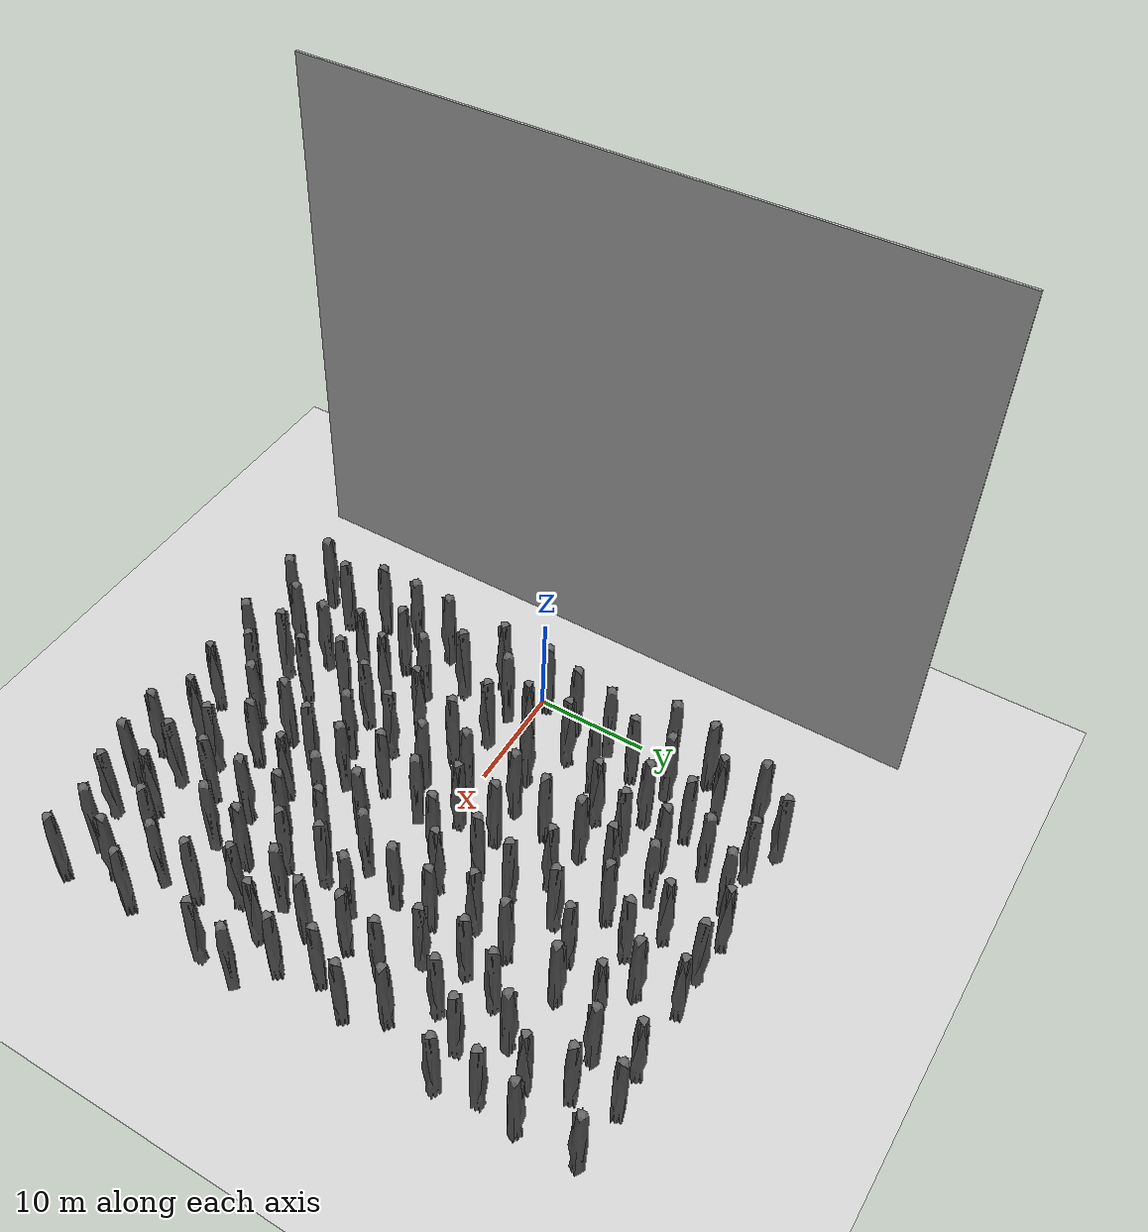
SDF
<sdf version="1.4">
 <world name="default">
  <model name="ground_plane">
   <static>1</static>
   <link name="link">
    <collision name="collision">
     <geometry><plane><normal>0 0 1</normal><size>1000 1000</size></plane></geometry>
     <surface>
      <contact><collide_bitmask>65535</collide_bitmask></contact>
      <friction><ode><mu>100</mu><mu2>50</mu2></ode></friction>
     </surface>
    </collision>
    <visual name="visual">
     <cast_shadows>0</cast_shadows>
     <geometry><plane><normal>0 0 1</normal><size>1000 1000</size></plane></geometry>
    </visual>
   </link>
  </model>
  <model name="wall_back">
   <static>1</static>
   <link name="link">
    <pose>0 0 25.0 0 0 0</pose>
    <collision name="collision"><geometry><box><size>60.0 0.2 50.0</size></box></geometry></collision>
    <visual name="visual">
     <cast_shadows>0</cast_shadows>
     <geometry><box><size>60.0 0.2 50.0</size></box></geometry>
    </visual>
   </link>
   <pose>-10.0 0.0 0 0 0 1.57</pose>
  </model>
  <include><uri>model://sun</uri></include>
  <include>
   <name>columnSimple Stone0</name>
   <uri>model://Simple Stone</uri>
   <pose>0.14754171669483185 -23.147881627082825 0 0 0 1.50489291628</pose>
   <static>true</static>
  </include>
  <include>
   <name>columnSimple Stone1</name>
   <uri>model://Simple Stone</uri>
   <pose>1.775051474571228 -20.0453462600708 0 0 0 0.287684038362</pose>
   <static>true</static>
  </include>
  <include>
   <name>columnSimple Stone2</name>
   <uri>model://Simple Stone</uri>
   <pose>0.33250316977500916 -16.852609634399414 0 0 0 3.57389762797</pose>
   <static>true</static>
  </include>
  <include>
   <name>columnSimple Stone3</name>
   <uri>model://Simple Stone</uri>
   <pose>0.23410218954086304 -13.350492477416992 0 0 0 2.6313120784</pose>
   <static>true</static>
  </include>
  <include>
   <name>columnSimple Stone4</name>
   <uri>model://Simple Stone</uri>
   <pose>0.2895624339580536 -9.847431182861328 0 0 0 2.84282429642</pose>
   <static>true</static>
  </include>
  <include>
   <name>columnSimple Stone5</name>
   <uri>model://Simple Stone</uri>
   <pose>0.48135095834732056 -3.866830825805664 0 0 0 4.75477015121</pose>
   <static>true</static>
  </include>
  <include>
   <name>columnSimple Stone6</name>
   <uri>model://Simple Stone</uri>
   <pose>0.6675546169281006 0.7646198272705078 0 0 0 3.59889966092</pose>
   <static>true</static>
  </include>
  <include>
   <name>columnSimple Stone7</name>
   <uri>model://Simple Stone</uri>
   <pose>1.5339256525039673 4.159309387207031 0 0 0 3.3661240134</pose>
   <static>true</static>
  </include>
  <include>
   <name>columnSimple Stone8</name>
   <uri>model://Simple Stone</uri>
   <pose>1.9819575548171997 7.715862274169922 0 0 0 2.05311160688</pose>
   <static>true</static>
  </include>
  <include>
   <name>columnSimple Stone9</name>
   <uri>model://Simple Stone</uri>
   <pose>0.3023340404033661 13.031356811523438 0 0 0 2.1610116684</pose>
   <static>true</static>
  </include>
  <include>
   <name>columnSimple Stone10</name>
   <uri>model://Simple Stone</uri>
   <pose>0.6261110901832581 16.76581573486328 0 0 0 0.749036448193</pose>
   <static>true</static>
  </include>
  <include>
   <name>columnSimple Stone11</name>
   <uri>model://Simple Stone</uri>
   <pose>1.9796584844589233 22.110496520996094 0 0 0 1.0792350142</pose>
   <static>true</static>
  </include>
  <include>
   <name>columnSimple Stone12</name>
   <uri>model://Simple Stone</uri>
   <pose>3.7548537254333496 -24.81793712079525 0 0 0 2.09072740564</pose>
   <static>true</static>
  </include>
  <include>
   <name>columnSimple Stone13</name>
   <uri>model://Simple Stone</uri>
   <pose>3.615328550338745 -12.432984352111816 0 0 0 0.7970898873</pose>
   <static>true</static>
  </include>
  <include>
   <name>columnSimple Stone14</name>
   <uri>model://Simple Stone</uri>
   <pose>3.1247594356536865 -6.4896392822265625 0 0 0 4.52911520205</pose>
   <static>true</static>
  </include>
  <include>
   <name>columnSimple Stone15</name>
   <uri>model://Simple Stone</uri>
   <pose>3.283823013305664 -1.7642936706542969 0 0 0 2.31075155043</pose>
   <static>true</static>
  </include>
  <include>
   <name>columnSimple Stone16</name>
   <uri>model://Simple Stone</uri>
   <pose>4.853242874145508 5.280311584472656 0 0 0 5.66923675732</pose>
   <static>true</static>
  </include>
  <include>
   <name>columnSimple Stone17</name>
   <uri>model://Simple Stone</uri>
   <pose>3.596442222595215 10.8251953125 0 0 0 3.69309660115</pose>
   <static>true</static>
  </include>
  <include>
   <name>columnSimple Stone18</name>
   <uri>model://Simple Stone</uri>
   <pose>3.556871175765991 14.328472137451172 0 0 0 1.36053178144</pose>
   <static>true</static>
  </include>
  <include>
   <name>columnSimple Stone19</name>
   <uri>model://Simple Stone</uri>
   <pose>3.3989083766937256 18.907337188720703 0 0 0 5.06022719829</pose>
   <static>true</static>
  </include>
  <include>
   <name>columnSimple Stone20</name>
   <uri>model://Simple Stone</uri>
   <pose>4.30951452255249 24.92007064819336 0 0 0 4.0857814324</pose>
   <static>true</static>
  </include>
  <include>
   <name>columnSimple Stone21</name>
   <uri>model://Simple Stone</uri>
   <pose>6.232275009155273 -22.34066104888916 0 0 0 3.12646417228</pose>
   <static>true</static>
  </include>
  <include>
   <name>columnSimple Stone22</name>
   <uri>model://Simple Stone</uri>
   <pose>6.822526454925537 -18.87165641784668 0 0 0 2.76766385324</pose>
   <static>true</static>
  </include>
  <include>
   <name>columnSimple Stone23</name>
   <uri>model://Simple Stone</uri>
   <pose>5.848011016845703 -15.506417274475098 0 0 0 5.18298819179</pose>
   <static>true</static>
  </include>
  <include>
   <name>columnSimple Stone24</name>
   <uri>model://Simple Stone</uri>
   <pose>7.113478660583496 -12.239445686340332 0 0 0 5.1514723059</pose>
   <static>true</static>
  </include>
  <include>
   <name>columnSimple Stone25</name>
   <uri>model://Simple Stone</uri>
   <pose>5.266031742095947 -9.262626647949219 0 0 0 2.74013546887</pose>
   <static>true</static>
  </include>
  <include>
   <name>columnSimple Stone26</name>
   <uri>model://Simple Stone</uri>
   <pose>6.785283088684082 -1.6447582244873047 0 0 0 4.54538749685</pose>
   <static>true</static>
  </include>
  <include>
   <name>columnSimple Stone27</name>
   <uri>model://Simple Stone</uri>
   <pose>5.110060691833496 1.4322757720947266 0 0 0 5.36890198906</pose>
   <static>true</static>
  </include>
  <include>
   <name>columnSimple Stone28</name>
   <uri>model://Simple Stone</uri>
   <pose>6.221914291381836 8.505409240722656 0 0 0 3.586111318</pose>
   <static>true</static>
  </include>
  <include>
   <name>columnSimple Stone29</name>
   <uri>model://Simple Stone</uri>
   <pose>7.046316623687744 14.014968872070312 0 0 0 3.01448209637</pose>
   <static>true</static>
  </include>
  <include>
   <name>columnSimple Stone30</name>
   <uri>model://Simple Stone</uri>
   <pose>6.69338846206665 17.715312957763672 0 0 0 0.35071986779</pose>
   <static>true</static>
  </include>
  <include>
   <name>columnSimple Stone31</name>
   <uri>model://Simple Stone</uri>
   <pose>9.584758758544922 -21.323132753372192 0 0 0 6.12786088334</pose>
   <static>true</static>
  </include>
  <include>
   <name>columnSimple Stone32</name>
   <uri>model://Simple Stone</uri>
   <pose>9.418303489685059 -15.007399559020996 0 0 0 0.38732367016</pose>
   <static>true</static>
  </include>
  <include>
   <name>columnSimple Stone33</name>
   <uri>model://Simple Stone</uri>
   <pose>8.741890907287598 -7.472328186035156 0 0 0 5.54532851408</pose>
   <static>true</static>
  </include>
  <include>
   <name>columnSimple Stone34</name>
   <uri>model://Simple Stone</uri>
   <pose>8.534000396728516 3.3977298736572266 0 0 0 1.40312726587</pose>
   <static>true</static>
  </include>
  <include>
   <name>columnSimple Stone35</name>
   <uri>model://Simple Stone</uri>
   <pose>9.099355697631836 10.521190643310547 0 0 0 5.57036833197</pose>
   <static>true</static>
  </include>
  <include>
   <name>columnSimple Stone36</name>
   <uri>model://Simple Stone</uri>
   <pose>9.137890815734863 20.55062484741211 0 0 0 2.20242143575</pose>
   <static>true</static>
  </include>
  <include>
   <name>columnSimple Stone37</name>
   <uri>model://Simple Stone</uri>
   <pose>7.591641426086426 23.694446563720703 0 0 0 4.18035922395</pose>
   <static>true</static>
  </include>
  <include>
   <name>columnSimple Stone38</name>
   <uri>model://Simple Stone</uri>
   <pose>10.217961311340332 -24.76893700659275 0 0 0 2.24409855426</pose>
   <static>true</static>
  </include>
  <include>
   <name>columnSimple Stone39</name>
   <uri>model://Simple Stone</uri>
   <pose>11.016083717346191 -18.125349044799805 0 0 0 4.03185819469</pose>
   <static>true</static>
  </include>
  <include>
   <name>columnSimple Stone40</name>
   <uri>model://Simple Stone</uri>
   <pose>10.575268745422363 -11.700445175170898 0 0 0 4.21427246811</pose>
   <static>true</static>
  </include>
  <include>
   <name>columnSimple Stone41</name>
   <uri>model://Simple Stone</uri>
   <pose>12.197824478149414 -8.047683715820312 0 0 0 6.00571770377</pose>
   <static>true</static>
  </include>
  <include>
   <name>columnSimple Stone42</name>
   <uri>model://Simple Stone</uri>
   <pose>9.934770584106445 -3.1794395446777344 0 0 0 3.87340123812</pose>
   <static>true</static>
  </include>
  <include>
   <name>columnSimple Stone43</name>
   <uri>model://Simple Stone</uri>
   <pose>12.219521522521973 -0.3005523681640625 0 0 0 2.79822735729</pose>
   <static>true</static>
  </include>
  <include>
   <name>columnSimple Stone44</name>
   <uri>model://Simple Stone</uri>
   <pose>11.929059028625488 4.262651443481445 0 0 0 2.76605358445</pose>
   <static>true</static>
  </include>
  <include>
   <name>columnSimple Stone45</name>
   <uri>model://Simple Stone</uri>
   <pose>10.537047386169434 13.716117858886719 0 0 0 4.30910957524</pose>
   <static>true</static>
  </include>
  <include>
   <name>columnSimple Stone46</name>
   <uri>model://Simple Stone</uri>
   <pose>10.158652305603027 17.19912338256836 0 0 0 3.18229982345</pose>
   <static>true</static>
  </include>
  <include>
   <name>columnSimple Stone47</name>
   <uri>model://Simple Stone</uri>
   <pose>11.127237319946289 23.434547424316406 0 0 0 1.94104317052</pose>
   <static>true</static>
  </include>
  <include>
   <name>columnSimple Stone48</name>
   <uri>model://Simple Stone</uri>
   <pose>12.954617500305176 -22.28155016899109 0 0 0 0.443772090493</pose>
   <static>true</static>
  </include>
  <include>
   <name>columnSimple Stone49</name>
   <uri>model://Simple Stone</uri>
   <pose>14.01638412475586 -11.042238235473633 0 0 0 1.93618825736</pose>
   <static>true</static>
  </include>
  <include>
   <name>columnSimple Stone50</name>
   <uri>model://Simple Stone</uri>
   <pose>13.354307174682617 -3.941854476928711 0 0 0 2.9370426648</pose>
   <static>true</static>
  </include>
  <include>
   <name>columnSimple Stone51</name>
   <uri>model://Simple Stone</uri>
   <pose>12.730664253234863 7.707767486572266 0 0 0 0.617810261586</pose>
   <static>true</static>
  </include>
  <include>
   <name>columnSimple Stone52</name>
   <uri>model://Simple Stone</uri>
   <pose>12.97669792175293 11.202621459960938 0 0 0 1.19347130401</pose>
   <static>true</static>
  </include>
  <include>
   <name>columnSimple Stone53</name>
   <uri>model://Simple Stone</uri>
   <pose>13.934209823608398 14.572734832763672 0 0 0 5.79841205643</pose>
   <static>true</static>
  </include>
  <include>
   <name>columnSimple Stone54</name>
   <uri>model://Simple Stone</uri>
   <pose>13.642833709716797 18.064098358154297 0 0 0 1.98400627539</pose>
   <static>true</static>
  </include>
  <include>
   <name>columnSimple Stone55</name>
   <uri>model://Simple Stone</uri>
   <pose>14.312417030334473 24.89370346069336 0 0 0 5.17506648581</pose>
   <static>true</static>
  </include>
  <include>
   <name>columnSimple Stone56</name>
   <uri>model://Simple Stone</uri>
   <pose>15.907683372497559 -24.16673392057419 0 0 0 5.39842269766</pose>
   <static>true</static>
  </include>
  <include>
   <name>columnSimple Stone57</name>
   <uri>model://Simple Stone</uri>
   <pose>15.739581108093262 -19.807469844818115 0 0 0 1.72862798228</pose>
   <static>true</static>
  </include>
  <include>
   <name>columnSimple Stone58</name>
   <uri>model://Simple Stone</uri>
   <pose>15.823551177978516 -16.30497646331787 0 0 0 3.19565959719</pose>
   <static>true</static>
  </include>
  <include>
   <name>columnSimple Stone59</name>
   <uri>model://Simple Stone</uri>
   <pose>16.974197387695312 -12.995818138122559 0 0 0 0.183602370901</pose>
   <static>true</static>
  </include>
  <include>
   <name>columnSimple Stone60</name>
   <uri>model://Simple Stone</uri>
   <pose>17.16084861755371 -9.497294425964355 0 0 0 2.45724492636</pose>
   <static>true</static>
  </include>
  <include>
   <name>columnSimple Stone61</name>
   <uri>model://Simple Stone</uri>
   <pose>16.055822372436523 -6.172624588012695 0 0 0 3.91631987204</pose>
   <static>true</static>
  </include>
  <include>
   <name>columnSimple Stone62</name>
   <uri>model://Simple Stone</uri>
   <pose>16.687164306640625 -2.2846736907958984 0 0 0 2.08439291432</pose>
   <static>true</static>
  </include>
  <include>
   <name>columnSimple Stone63</name>
   <uri>model://Simple Stone</uri>
   <pose>15.472129821777344 1.0013885498046875 0 0 0 4.85713004822</pose>
   <static>true</static>
  </include>
  <include>
   <name>columnSimple Stone64</name>
   <uri>model://Simple Stone</uri>
   <pose>15.424198150634766 4.504560470581055 0 0 0 3.28803245864</pose>
   <static>true</static>
  </include>
  <include>
   <name>columnSimple Stone65</name>
   <uri>model://Simple Stone</uri>
   <pose>16.70648193359375 10.581733703613281 0 0 0 4.63384775706</pose>
   <static>true</static>
  </include>
  <include>
   <name>columnSimple Stone66</name>
   <uri>model://Simple Stone</uri>
   <pose>17.096233367919922 16.081417083740234 0 0 0 0.678942152014</pose>
   <static>true</static>
  </include>
  <include>
   <name>columnSimple Stone67</name>
   <uri>model://Simple Stone</uri>
   <pose>16.246177673339844 20.748249053955078 0 0 0 5.36750675135</pose>
   <static>true</static>
  </include>
  <include>
   <name>columnSimple Stone68</name>
   <uri>model://Simple Stone</uri>
   <pose>19.785531997680664 -23.142656207084656 0 0 0 5.49311071617</pose>
   <static>true</static>
  </include>
  <include>
   <name>columnSimple Stone69</name>
   <uri>model://Simple Stone</uri>
   <pose>19.19119644165039 -17.271142959594727 0 0 0 3.59579196386</pose>
   <static>true</static>
  </include>
  <include>
   <name>columnSimple Stone70</name>
   <uri>model://Simple Stone</uri>
   <pose>19.01988983154297 0.8746089935302734 0 0 0 3.47509623889</pose>
   <static>true</static>
  </include>
  <include>
   <name>columnSimple Stone71</name>
   <uri>model://Simple Stone</uri>
   <pose>18.88249397277832 5.06553840637207 0 0 0 3.8583642764</pose>
   <static>true</static>
  </include>
  <include>
   <name>columnSimple Stone72</name>
   <uri>model://Simple Stone</uri>
   <pose>19.530733108520508 8.508544921875 0 0 0 6.24923563768</pose>
   <static>true</static>
  </include>
  <include>
   <name>columnSimple Stone73</name>
   <uri>model://Simple Stone</uri>
   <pose>19.67139434814453 12.775707244873047 0 0 0 6.20291434418</pose>
   <static>true</static>
  </include>
  <include>
   <name>columnSimple Stone74</name>
   <uri>model://Simple Stone</uri>
   <pose>19.208036422729492 18.876911163330078 0 0 0 3.87512907907</pose>
   <static>true</static>
  </include>
  <include>
   <name>columnSimple Stone75</name>
   <uri>model://Simple Stone</uri>
   <pose>17.92275619506836 24.573020935058594 0 0 0 5.95423371622</pose>
   <static>true</static>
  </include>
  <include>
   <name>columnSimple Stone76</name>
   <uri>model://Simple Stone</uri>
   <pose>21.3675537109375 -20.01668119430542 0 0 0 6.2414470317</pose>
   <static>true</static>
  </include>
  <include>
   <name>columnSimple Stone77</name>
   <uri>model://Simple Stone</uri>
   <pose>20.65690040588379 -12.905740737915039 0 0 0 5.24605060373</pose>
   <static>true</static>
  </include>
  <include>
   <name>columnSimple Stone78</name>
   <uri>model://Simple Stone</uri>
   <pose>20.66305923461914 -9.402246475219727 0 0 0 2.37636288873</pose>
   <static>true</static>
  </include>
  <include>
   <name>columnSimple Stone79</name>
   <uri>model://Simple Stone</uri>
   <pose>20.231496810913086 -5.486799240112305 0 0 0 1.63063263135</pose>
   <static>true</static>
  </include>
  <include>
   <name>columnSimple Stone80</name>
   <uri>model://Simple Stone</uri>
   <pose>21.756608963012695 3.0620460510253906 0 0 0 5.71264476725</pose>
   <static>true</static>
  </include>
  <include>
   <name>columnSimple Stone81</name>
   <uri>model://Simple Stone</uri>
   <pose>22.00667381286621 15.387409210205078 0 0 0 0.232099360524</pose>
   <static>true</static>
  </include>
  <include>
   <name>columnSimple Stone82</name>
   <uri>model://Simple Stone</uri>
   <pose>21.798364639282227 21.235877990722656 0 0 0 0.927096298588</pose>
   <static>true</static>
  </include>
  <include>
   <name>columnSimple Stone83</name>
   <uri>model://Simple Stone</uri>
   <pose>21.42320442199707 24.719234466552734 0 0 0 4.8984930655</pose>
   <static>true</static>
  </include>
  <include>
   <name>columnSimple Stone84</name>
   <uri>model://Simple Stone</uri>
   <pose>22.792057037353516 -24.94135555624962 0 0 0 3.47200046269</pose>
   <static>true</static>
  </include>
  <include>
   <name>columnSimple Stone85</name>
   <uri>model://Simple Stone</uri>
   <pose>24.489177703857422 -21.607271432876587 0 0 0 4.80179430205</pose>
   <static>true</static>
  </include>
  <include>
   <name>columnSimple Stone86</name>
   <uri>model://Simple Stone</uri>
   <pose>24.295787811279297 -18.093153953552246 0 0 0 4.31720091855</pose>
   <static>true</static>
  </include>
  <include>
   <name>columnSimple Stone87</name>
   <uri>model://Simple Stone</uri>
   <pose>24.2504825592041 -14.304128646850586 0 0 0 1.73005316285</pose>
   <static>true</static>
  </include>
  <include>
   <name>columnSimple Stone88</name>
   <uri>model://Simple Stone</uri>
   <pose>23.86609649658203 -10.821779251098633 0 0 0 3.5940824211</pose>
   <static>true</static>
  </include>
  <include>
   <name>columnSimple Stone89</name>
   <uri>model://Simple Stone</uri>
   <pose>23.32729721069336 -7.127084732055664 0 0 0 3.66996996153</pose>
   <static>true</static>
  </include>
  <include>
   <name>columnSimple Stone90</name>
   <uri>model://Simple Stone</uri>
   <pose>23.295921325683594 -2.8103885650634766 0 0 0 2.4842188336</pose>
   <static>true</static>
  </include>
  <include>
   <name>columnSimple Stone91</name>
   <uri>model://Simple Stone</uri>
   <pose>24.661624908447266 1.0082244873046875 0 0 0 1.76191615588</pose>
   <static>true</static>
  </include>
  <include>
   <name>columnSimple Stone92</name>
   <uri>model://Simple Stone</uri>
   <pose>23.38998031616211 7.635951995849609 0 0 0 4.65788817834</pose>
   <static>true</static>
  </include>
  <include>
   <name>columnSimple Stone93</name>
   <uri>model://Simple Stone</uri>
   <pose>24.25596809387207 11.088733673095703 0 0 0 0.903469827186</pose>
   <static>true</static>
  </include>
  <include>
   <name>columnSimple Stone94</name>
   <uri>model://Simple Stone</uri>
   <pose>26.43863296508789 -24.821091145277023 0 0 0 1.64287145411</pose>
   <static>true</static>
  </include>
  <include>
   <name>columnSimple Stone95</name>
   <uri>model://Simple Stone</uri>
   <pose>26.676822662353516 -8.399438858032227 0 0 0 0.578744301983</pose>
   <static>true</static>
  </include>
  <include>
   <name>columnSimple Stone96</name>
   <uri>model://Simple Stone</uri>
   <pose>26.071208953857422 -4.948678970336914 0 0 0 0.151527504299</pose>
   <static>true</static>
  </include>
  <include>
   <name>columnSimple Stone97</name>
   <uri>model://Simple Stone</uri>
   <pose>24.951549530029297 4.49970817565918 0 0 0 3.50546934993</pose>
   <static>true</static>
  </include>
  <include>
   <name>columnSimple Stone98</name>
   <uri>model://Simple Stone</uri>
   <pose>25.390947341918945 16.29360580444336 0 0 0 1.06649019697</pose>
   <static>true</static>
  </include>
  <include>
   <name>columnSimple Stone99</name>
   <uri>model://Simple Stone</uri>
   <pose>24.981904983520508 19.773143768310547 0 0 0 5.34444864293</pose>
   <static>true</static>
  </include>
  <include>
   <name>columnSimple Stone100</name>
   <uri>model://Simple Stone</uri>
   <pose>28.023664474487305 -21.195658206939697 0 0 0 5.47272307137</pose>
   <static>true</static>
  </include>
  <include>
   <name>columnSimple Stone101</name>
   <uri>model://Simple Stone</uri>
   <pose>27.84737205505371 -15.029305458068848 0 0 0 2.09380733805</pose>
   <static>true</static>
  </include>
  <include>
   <name>columnSimple Stone102</name>
   <uri>model://Simple Stone</uri>
   <pose>28.218481063842773 -11.545516014099121 0 0 0 3.31704898163</pose>
   <static>true</static>
  </include>
  <include>
   <name>columnSimple Stone103</name>
   <uri>model://Simple Stone</uri>
   <pose>29.673864364624023 -6.584981918334961 0 0 0 1.98314676164</pose>
   <static>true</static>
  </include>
  <include>
   <name>columnSimple Stone104</name>
   <uri>model://Simple Stone</uri>
   <pose>27.376155853271484 -1.697275161743164 0 0 0 2.48111565346</pose>
   <static>true</static>
  </include>
  <include>
   <name>columnSimple Stone105</name>
   <uri>model://Simple Stone</uri>
   <pose>28.174705505371094 5.872943878173828 0 0 0 6.09373994382</pose>
   <static>true</static>
  </include>
  <include>
   <name>columnSimple Stone106</name>
   <uri>model://Simple Stone</uri>
   <pose>27.237398147583008 9.248737335205078 0 0 0 4.14756292715</pose>
   <static>true</static>
  </include>
  <include>
   <name>columnSimple Stone107</name>
   <uri>model://Simple Stone</uri>
   <pose>28.441280364990234 12.538898468017578 0 0 0 4.20556891529</pose>
   <static>true</static>
  </include>
  <include>
   <name>columnSimple Stone108</name>
   <uri>model://Simple Stone</uri>
   <pose>28.235088348388672 21.073646545410156 0 0 0 2.70497484308</pose>
   <static>true</static>
  </include>
  <include>
   <name>columnSimple Stone109</name>
   <uri>model://Simple Stone</uri>
   <pose>27.522520065307617 24.511337280273438 0 0 0 5.27145161096</pose>
   <static>true</static>
  </include>
  <include>
   <name>columnSimple Stone110</name>
   <uri>model://Simple Stone</uri>
   <pose>29.88046646118164 -24.16665083169937 0 0 0 4.83076193401</pose>
   <static>true</static>
  </include>
  <include>
   <name>columnSimple Stone111</name>
   <uri>model://Simple Stone</uri>
   <pose>30.78707504272461 -19.013333320617676 0 0 0 0.697834756046</pose>
   <static>true</static>
  </include>
  <include>
   <name>columnSimple Stone112</name>
   <uri>model://Simple Stone</uri>
   <pose>31.41917610168457 -9.622810363769531 0 0 0 4.89496032325</pose>
   <static>true</static>
  </include>
  <include>
   <name>columnSimple Stone113</name>
   <uri>model://Simple Stone</uri>
   <pose>30.99445152282715 -3.2504310607910156 0 0 0 0.951773324226</pose>
   <static>true</static>
  </include>
  <include>
   <name>columnSimple Stone114</name>
   <uri>model://Simple Stone</uri>
   <pose>30.328411102294922 0.1891765594482422 0 0 0 0.769832068639</pose>
   <static>true</static>
  </include>
  <include>
   <name>columnSimple Stone115</name>
   <uri>model://Simple Stone</uri>
   <pose>30.881614685058594 3.6487255096435547 0 0 0 4.1159702335</pose>
   <static>true</static>
  </include>
  <include>
   <name>columnSimple Stone116</name>
   <uri>model://Simple Stone</uri>
   <pose>31.1144962310791 9.187660217285156 0 0 0 4.2530543361</pose>
   <static>true</static>
  </include>
  <include>
   <name>columnSimple Stone117</name>
   <uri>model://Simple Stone</uri>
   <pose>30.62302589416504 15.280158996582031 0 0 0 1.37291111569</pose>
   <static>true</static>
  </include>
  <include>
   <name>columnSimple Stone118</name>
   <uri>model://Simple Stone</uri>
   <pose>31.727962493896484 21.34630584716797 0 0 0 0.291153368884</pose>
   <static>true</static>
  </include>
  <include>
   <name>columnSimple Stone119</name>
   <uri>model://Simple Stone</uri>
   <pose>31.015954971313477 24.776691436767578 0 0 0 3.57064627477</pose>
   <static>true</static>
  </include>
  <include>
   <name>columnSimple Stone120</name>
   <uri>model://Simple Stone</uri>
   <pose>33.183719635009766 -22.999166250228882 0 0 0 2.35296101401</pose>
   <static>true</static>
  </include>
  <include>
   <name>columnSimple Stone121</name>
   <uri>model://Simple Stone</uri>
   <pose>33.00014877319336 -16.297303199768066 0 0 0 2.61833322556</pose>
   <static>true</static>
  </include>
  <include>
   <name>columnSimple Stone122</name>
   <uri>model://Simple Stone</uri>
   <pose>32.906227111816406 -12.795063018798828 0 0 0 0.676880946133</pose>
   <static>true</static>
  </include>
  <include>
   <name>columnSimple Stone123</name>
   <uri>model://Simple Stone</uri>
   <pose>33.22486114501953 -6.369760513305664 0 0 0 5.84381453298</pose>
   <static>true</static>
  </include>
  <include>
   <name>columnSimple Stone124</name>
   <uri>model://Simple Stone</uri>
   <pose>33.83108901977539 0.11325454711914062 0 0 0 3.89371747811</pose>
   <static>true</static>
  </include>
  <include>
   <name>columnSimple Stone125</name>
   <uri>model://Simple Stone</uri>
   <pose>33.78850173950195 6.411312103271484 0 0 0 0.971728060289</pose>
   <static>true</static>
  </include>
  <include>
   <name>columnSimple Stone126</name>
   <uri>model://Simple Stone</uri>
   <pose>32.98817443847656 12.14803695678711 0 0 0 0.142494839548</pose>
   <static>true</static>
  </include>
  <include>
   <name>columnSimple Stone127</name>
   <uri>model://Simple Stone</uri>
   <pose>32.81281280517578 18.014995574951172 0 0 0 4.9444459534</pose>
   <static>true</static>
  </include>
  <include>
   <name>columnSimple Stone128</name>
   <uri>model://Simple Stone</uri>
   <pose>36.8278694152832 -23.389657378196716 0 0 0 0.975467180038</pose>
   <static>true</static>
  </include>
  <include>
   <name>columnSimple Stone129</name>
   <uri>model://Simple Stone</uri>
   <pose>34.74295425415039 -19.861762046813965 0 0 0 3.4509412685</pose>
   <static>true</static>
  </include>
  <include>
   <name>columnSimple Stone130</name>
   <uri>model://Simple Stone</uri>
   <pose>36.46576690673828 -16.811119079589844 0 0 0 0.907206623693</pose>
   <static>true</static>
  </include>
  <include>
   <name>columnSimple Stone131</name>
   <uri>model://Simple Stone</uri>
   <pose>36.955284118652344 -9.166425704956055 0 0 0 6.28105767491</pose>
   <static>true</static>
  </include>
  <include>
   <name>columnSimple Stone132</name>
   <uri>model://Simple Stone</uri>
   <pose>34.816673278808594 -3.248760223388672 0 0 0 0.608957609975</pose>
   <static>true</static>
  </include>
  <include>
   <name>columnSimple Stone133</name>
   <uri>model://Simple Stone</uri>
   <pose>35.351173400878906 3.2756195068359375 0 0 0 3.92974717906</pose>
   <static>true</static>
  </include>
  <include>
   <name>columnSimple Stone134</name>
   <uri>model://Simple Stone</uri>
   <pose>36.483863830566406 12.381866455078125 0 0 0 4.32425943003</pose>
   <static>true</static>
  </include>
  <include>
   <name>columnSimple Stone135</name>
   <uri>model://Simple Stone</uri>
   <pose>35.59415817260742 15.770511627197266 0 0 0 0.0232469706935</pose>
   <static>true</static>
  </include>
  <include>
   <name>columnSimple Stone136</name>
   <uri>model://Simple Stone</uri>
   <pose>36.0959587097168 19.237892150878906 0 0 0 1.12328751351</pose>
   <static>true</static>
  </include>
  <include>
   <name>columnSimple Stone137</name>
   <uri>model://Simple Stone</uri>
   <pose>35.854427337646484 24.22441864013672 0 0 0 2.67271012619</pose>
   <static>true</static>
  </include>
  <include>
   <name>columnSimple Stone140</name>
   <uri>model://Simple Stone</uri>
   <pose>37.33576583862305 -5.683647155761719 0 0 0 2.33169639345</pose>
   <static>true</static>
  </include>
 </world>
</sdf>
